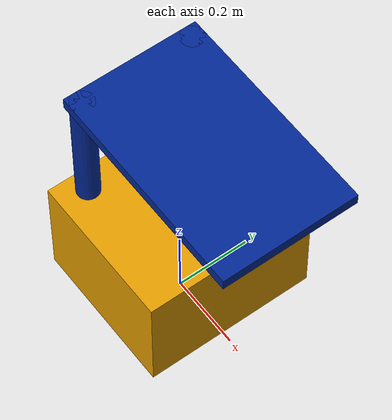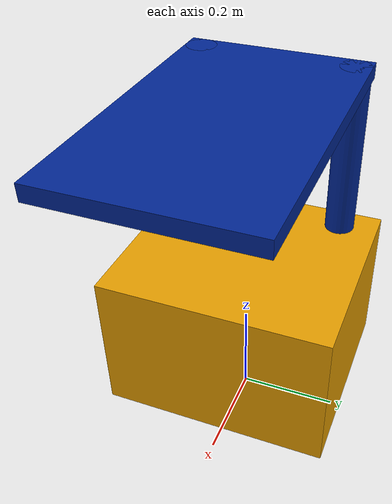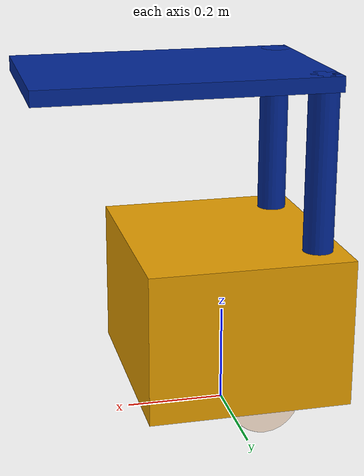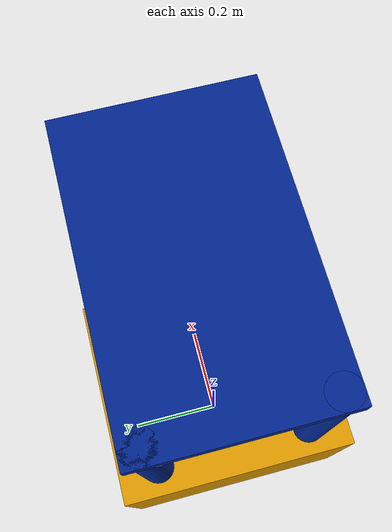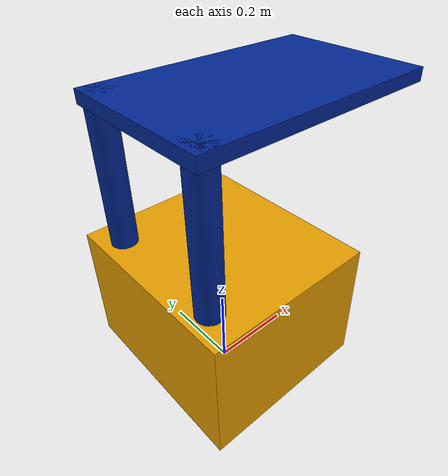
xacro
<?xml version="1.0"?>
<robot name="urdfbot" xmlns:xacro="http://ros.org/wiki/xacro">

    <xacro:property name="wheel_radius" value="0.07"/>
    <xacro:property name="wheel_length" value="0.05"/>
    <xacro:property name="linear_length" value="0.6435"/>

    <material name="blue">
        <color rgba="0.006 0.151 0.581 1"/>
    </material>

    <material name="white">
        <color rgba="1.0 0.91 0.827 1"/>
    </material>

    <link name="base_link">
        <visual>
            <origin rpy="0 0 0" xyz="0 0 0.22"/>
            <geometry>
                <box size="0.406 0.456 0.3"/>
            </geometry>
        </visual>
    </link>

    <link name="wheel_1">
        <visual>
            <origin rpy="0 1.571 1.571" xyz="0 0 0"/>
            <geometry>
                <cylinder radius="${0.07}" length="${0.05}"/>
            </geometry>
            <material name="white"/>
        </visual>
    </link>

    <joint name="base_link_to_wheel_1_joint" type="continuous">
        <origin xyz="-0.043 0.15 0.07" rpy="0 0 0"/>
        <parent link="base_link"/>
        <child link="wheel_1"/>
        <axis xyz="0 1 0"/>
    </joint>

    <link name="wheel_2">
        <visual>
            <origin rpy="0 1.571 1.571" xyz="0 0 0"/>
            <geometry>
                <cylinder radius="${0.07}" length="${0.05}"/>
            </geometry>
            <material name="white"/>
        </visual>
    </link>

    <joint name="base_link_to_wheel_2_joint" type="continuous">
        <origin xyz="-0.043 -0.15 0.07" rpy="0 0 0"/>
        <parent link="base_link"/>
        <child link="wheel_2"/>
        <axis xyz="0 1 0"/>
    </joint>

    <link name="linear_1">
        <visual>
            <origin rpy="0 0 0" xyz="0 0 0"/>
            <geometry>
                <cylinder radius="${0.03}" length="${0.6435}"/>
            </geometry>
            <material name="blue"/>
        </visual>
    </link>

    <joint name="base_link_to_linear_1_joint" type="prismatic">
        <origin xyz="-0.15 0.15 0.39375" rpy="0 0 0"/>
        <parent link="base_link"/>
        <child link="linear_1"/>
        <axis xyz="0 0 1"/>
        <limit effort="100" velocity="0" lower="0" upper="0.3"/>
    </joint>

    <link name="linear_2">
        <visual>
            <origin rpy="0 0 0" xyz="0 0 0"/>
            <geometry>
                <cylinder radius="${0.03}" length="${0.6435}"/>
            </geometry>
            <material name="blue"/>
        </visual>
    </link>

    <joint name="linear_1_to_linear_2_joint" type="fixed">
        <origin xyz="0 -0.3 0" rpy="0 0 0"/>
        <parent link="linear_1"/>
        <child link="linear_2"/>
    </joint>

    <link name="arm">
        <visual>
            <origin rpy="0 0 0" xyz="0 0 0"/>
            <geometry>
                <box size="0.5805 0.36 0.03"/>
            </geometry>
            <material name="blue"/>
        </visual>
    </link>

    <joint name="linear_1_to_arm_joint" type="fixed">
        <origin xyz="0.26025 -0.15 0.30675" rpy="0 0 0"/>
        <parent link="linear_1"/>
        <child link="arm"/>
    </joint>

</robot>
